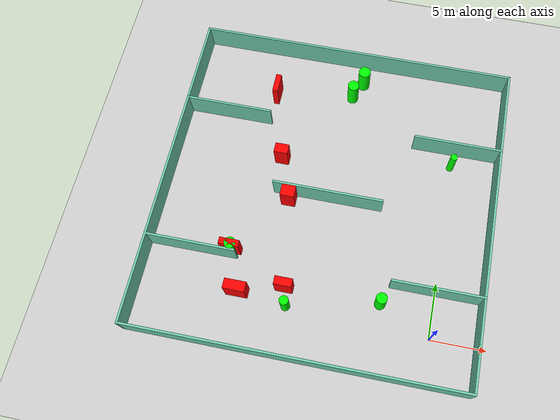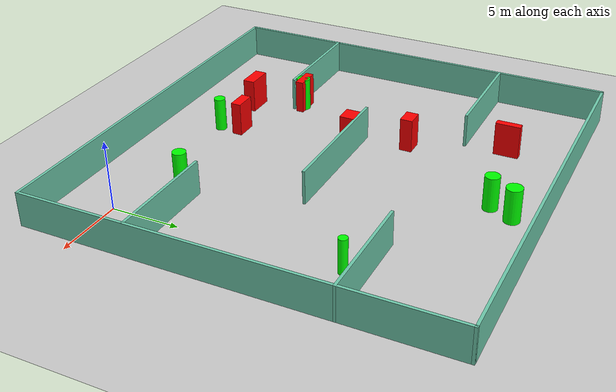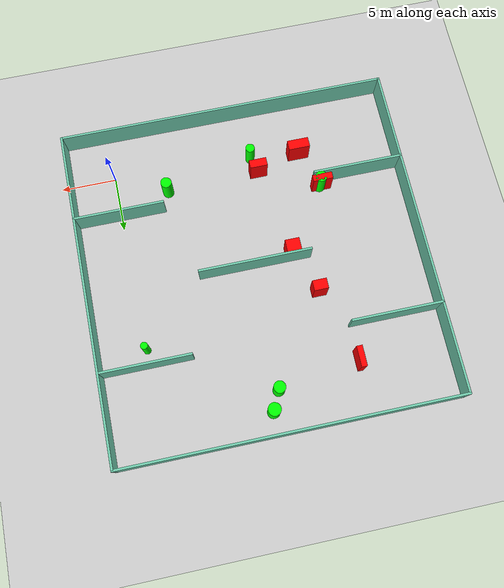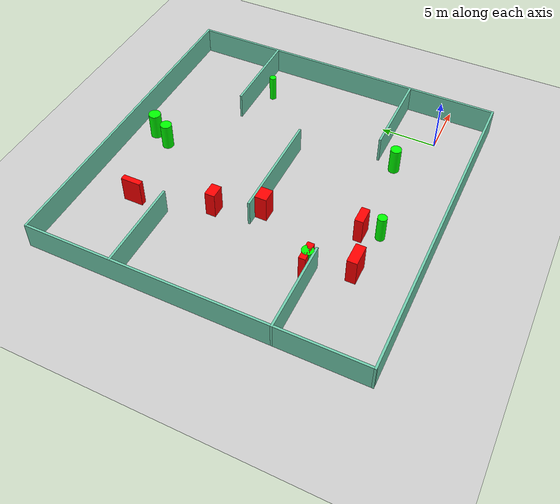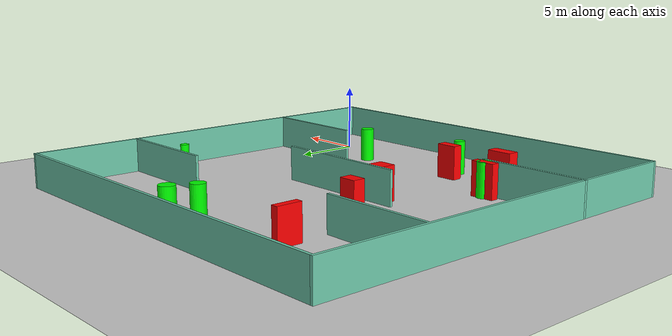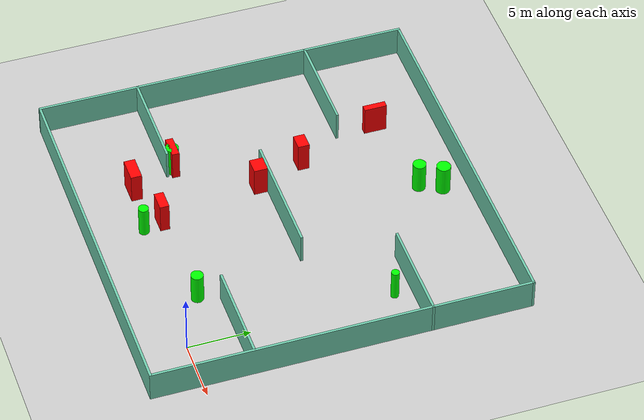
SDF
<sdf version="1.7">
 <world name="default">
  <light name="sun" type="directional">
   <pose>0 0 10 0 -0 0</pose>
   <diffuse>0.8 0.8 0.8 1</diffuse>
   <specular>0.2 0.2 0.2 1</specular>
   <attenuation>
    <range>1000</range>
    <constant>0.9</constant>
    <linear>0.01</linear>
    <quadratic>0.001</quadratic>
   </attenuation>
   <direction>-0.5 0.1 -0.9</direction>
   <spot><inner_angle>0</inner_angle><outer_angle>0</outer_angle><falloff>0</falloff></spot>
  </light>
  <model name="ground_plane">
   <static>1</static>
   <link name="link">
    <collision name="collision">
     <geometry><plane><normal>0 0 1</normal><size>100 100</size></plane></geometry>
     <surface>
      <contact><collide_bitmask>65535</collide_bitmask></contact>
      <friction><ode><mu>100</mu><mu2>50</mu2></ode></friction>
     </surface>
    </collision>
    <visual name="visual">
     <cast_shadows>0</cast_shadows>
     <geometry><plane><normal>0 0 1</normal><size>100 100</size></plane></geometry>
     <material>
      <script><uri>file://media/materials/scripts/gazebo.material</uri><name>Gazebo/Grey</name></script>
     </material>
    </visual>
   </link>
  </model>
  <gravity>0 0 -9.8</gravity>
  <magnetic_field>6e-06 2.3e-05 -4.2e-05</magnetic_field>
  <atmosphere type="adiabatic"/>
  <physics type="ode">
   <max_step_size>0.001</max_step_size>
   <real_time_factor>1</real_time_factor>
   <real_time_update_rate>1000</real_time_update_rate>
  </physics>
  <scene><ambient>0.4 0.4 0.4 1</ambient><background>0.7 0.7 0.7 1</background><shadows>1</shadows></scene>
  <spherical_coordinates>
   <surface_model>EARTH_WGS84</surface_model>
   <latitude_deg>0</latitude_deg>
   <longitude_deg>0</longitude_deg>
   <elevation>0</elevation>
   <heading_deg>0</heading_deg>
  </spherical_coordinates>
  <model name="my_base_walls">
   <link name="Wall_10">
    <collision name="Wall_10_Collision">
     <geometry><box><size>8.2 0.2 2.5</size></box></geometry>
     <pose>0 0 1.25 0 -0 0</pose>
    </collision>
    <visual name="Wall_10_Visual">
     <pose>0 0 1.25 0 -0 0</pose>
     <geometry><box><size>8.2 0.2 2.5</size></box></geometry>
     <material>
      <script><uri>file://media/materials/scripts/gazebo.material</uri><name>Gazebo/Grey</name></script>
      <ambient>0.435294 0.796078 0.67451 1</ambient>
     </material>
     <meta><layer>0</layer></meta>
    </visual>
    <pose>-11 -7 0 0 -0 0</pose>
   </link>
   <link name="Wall_12">
    <collision name="Wall_12_Collision">
     <geometry><box><size>8.2 0.2 2.5</size></box></geometry>
     <pose>0 0 1.25 0 -0 0</pose>
    </collision>
    <visual name="Wall_12_Visual">
     <pose>0 0 1.25 0 -0 0</pose>
     <geometry><box><size>8.2 0.2 2.5</size></box></geometry>
     <material>
      <script><uri>file://media/materials/scripts/gazebo.material</uri><name>Gazebo/Grey</name></script>
      <ambient>0.435294 0.796078 0.67451 1</ambient>
     </material>
     <meta><layer>0</layer></meta>
    </visual>
    <pose>-11 7 0 0 -0 0</pose>
   </link>
   <link name="Wall_14">
    <collision name="Wall_14_Collision">
     <geometry><box><size>8.2 0.2 2.5</size></box></geometry>
     <pose>0 0 1.25 0 -0 0</pose>
    </collision>
    <visual name="Wall_14_Visual">
     <pose>0 0 1.25 0 -0 0</pose>
     <geometry><box><size>8.2 0.2 2.5</size></box></geometry>
     <material>
      <script><uri>file://media/materials/scripts/gazebo.material</uri><name>Gazebo/Grey</name></script>
      <ambient>0.435294 0.796078 0.67451 1</ambient>
     </material>
     <meta><layer>0</layer></meta>
    </visual>
    <pose>11 7 0 0 -0 3.14159</pose>
   </link>
   <link name="Wall_16">
    <collision name="Wall_16_Collision">
     <geometry><box><size>10.2 0.2 2.5</size></box></geometry>
     <pose>0 0 1.25 0 -0 0</pose>
    </collision>
    <visual name="Wall_16_Visual">
     <pose>0 0 1.25 0 -0 0</pose>
     <geometry><box><size>10.2 0.2 2.5</size></box></geometry>
     <material>
      <script><uri>file://media/materials/scripts/gazebo.material</uri><name>Gazebo/Grey</name></script>
      <ambient>0.435294 0.796078 0.67451 1</ambient>
     </material>
     <meta><layer>0</layer></meta>
    </visual>
    <pose>0 0 0 0 -0 3.14159</pose>
   </link>
   <link name="Wall_2">
    <collision name="Wall_2_Collision">
     <geometry><box><size>30.2 0.2 2.5</size></box></geometry>
     <pose>0 0 1.25 0 -0 0</pose>
    </collision>
    <visual name="Wall_2_Visual">
     <pose>0 0 1.25 0 -0 0</pose>
     <geometry><box><size>30.2 0.2 2.5</size></box></geometry>
     <material>
      <script><uri>file://media/materials/scripts/gazebo.material</uri><name>Gazebo/Grey</name></script>
      <ambient>0.435294 0.796078 0.67451 1</ambient>
     </material>
     <meta><layer>0</layer></meta>
    </visual>
    <pose>0 -15 0 0 -0 3.14159</pose>
   </link>
   <link name="Wall_3">
    <collision name="Wall_3_Collision">
     <geometry><box><size>30.2 0.2 2.5</size></box></geometry>
     <pose>0 0 1.25 0 -0 0</pose>
    </collision>
    <visual name="Wall_3_Visual">
     <pose>0 0 1.25 0 -0 0</pose>
     <geometry><box><size>30.2 0.2 2.5</size></box></geometry>
     <material>
      <script><uri>file://media/materials/scripts/gazebo.material</uri><name>Gazebo/Grey</name></script>
      <ambient>0.435294 0.796078 0.67451 1</ambient>
     </material>
     <meta><layer>0</layer></meta>
    </visual>
    <pose>-15 0 0 0 -0 1.5708</pose>
   </link>
   <link name="Wall_4">
    <collision name="Wall_4_Collision">
     <geometry><box><size>30.2 0.2 2.5</size></box></geometry>
     <pose>0 0 1.25 0 -0 0</pose>
    </collision>
    <visual name="Wall_4_Visual">
     <pose>0 0 1.25 0 -0 0</pose>
     <geometry><box><size>30.2 0.2 2.5</size></box></geometry>
     <material>
      <script><uri>file://media/materials/scripts/gazebo.material</uri><name>Gazebo/Grey</name></script>
      <ambient>0.435294 0.796078 0.67451 1</ambient>
     </material>
     <meta><layer>0</layer></meta>
    </visual>
    <pose>0 15 0 0 -0 0</pose>
   </link>
   <link name="Wall_6">
    <collision name="Wall_6_Collision">
     <geometry><box><size>30.2 0.2 2.5</size></box></geometry>
     <pose>0 0 1.25 0 -0 0</pose>
    </collision>
    <visual name="Wall_6_Visual">
     <pose>0 0 1.25 0 -0 0</pose>
     <geometry><box><size>30.2 0.2 2.5</size></box></geometry>
     <material>
      <script><uri>file://media/materials/scripts/gazebo.material</uri><name>Gazebo/Grey</name></script>
      <ambient>0.435294 0.796078 0.67451 1</ambient>
     </material>
     <meta><layer>0</layer></meta>
    </visual>
    <pose>15 0 0 0 -0 1.5708</pose>
   </link>
   <link name="Wall_8">
    <collision name="Wall_8_Collision">
     <geometry><box><size>8.2 0.2 2.5</size></box></geometry>
     <pose>0 0 1.25 0 -0 0</pose>
    </collision>
    <visual name="Wall_8_Visual">
     <pose>0 0 1.25 0 -0 0</pose>
     <geometry><box><size>8.2 0.2 2.5</size></box></geometry>
     <material>
      <script><uri>file://media/materials/scripts/gazebo.material</uri><name>Gazebo/Grey</name></script>
      <ambient>0.435294 0.796078 0.67451 1</ambient>
     </material>
     <meta><layer>0</layer></meta>
    </visual>
    <pose>11 -7 0 0 -0 3.14159</pose>
   </link>
   <static>1</static>
   <pose>-11 11 0 0 -0 0</pose>
  </model>
  <model name="cylinder1">
   <static>1</static>
   <link name="link">
    <inertial>
     <mass>1</mass>
     <inertia><ixx>0.5</ixx><ixy>0</ixy><ixz>0</ixz><iyy>0.5</iyy><iyz>0</iyz><izz>1</izz></inertia>
    </inertial>
    <collision name="collision">
     <geometry><cylinder><radius>0.5268122976512754</radius><length>2.5</length></cylinder></geometry>
    </collision>
    <visual name="visual">
     <geometry><cylinder><radius>0.5268122976512754</radius><length>2.5</length></cylinder></geometry>
     <material>
      <ambient>0 1 0 1</ambient>
      <diffuse>0 1 0 1</diffuse>
      <specular>0.1 0.1 0.1 1</specular>
      <emissive>0 0 0 0</emissive>
     </material>
    </visual>
   </link>
   <pose>-10.668761010996414 22.242909591233484 1.25 0 0 0</pose>
  </model>
  <model name="cylinder2">
   <static>1</static>
   <link name="link">
    <inertial>
     <mass>1</mass>
     <inertia><ixx>0.5</ixx><ixy>0</ixy><ixz>0</ixz><iyy>0.5</iyy><iyz>0</iyz><izz>1</izz></inertia>
    </inertial>
    <collision name="collision">
     <geometry><cylinder><radius>0.315960898025115</radius><length>2.5</length></cylinder></geometry>
    </collision>
    <visual name="visual">
     <geometry><cylinder><radius>0.315960898025115</radius><length>2.5</length></cylinder></geometry>
     <material>
      <ambient>0 1 0 1</ambient>
      <diffuse>0 1 0 1</diffuse>
      <specular>0.1 0.1 0.1 1</specular>
      <emissive>0 0 0 0</emissive>
     </material>
    </visual>
   </link>
   <pose>-0.21780796337167985 16.508270981192894 1.25 0 0 0</pose>
  </model>
  <model name="cylinder3">
   <static>1</static>
   <link name="link">
    <inertial>
     <mass>1</mass>
     <inertia><ixx>0.5</ixx><ixy>0</ixy><ixz>0</ixz><iyy>0.5</iyy><iyz>0</iyz><izz>1</izz></inertia>
    </inertial>
    <collision name="collision">
     <geometry><cylinder><radius>0.5692313069539834</radius><length>2.5</length></cylinder></geometry>
    </collision>
    <visual name="visual">
     <geometry><cylinder><radius>0.5692313069539834</radius><length>2.5</length></cylinder></geometry>
     <material>
      <ambient>0 1 0 1</ambient>
      <diffuse>0 1 0 1</diffuse>
      <specular>0.1 0.1 0.1 1</specular>
      <emissive>0 0 0 0</emissive>
     </material>
    </visual>
   </link>
   <pose>-9.859405309523899 23.939877246051708 1.25 0 0 0</pose>
  </model>
  <model name="cylinder4">
   <static>1</static>
   <link name="link">
    <inertial>
     <mass>1</mass>
     <inertia><ixx>0.5</ixx><ixy>0</ixy><ixz>0</ixz><iyy>0.5</iyy><iyz>0</iyz><izz>1</izz></inertia>
    </inertial>
    <collision name="collision">
     <geometry><cylinder><radius>0.5186174000991292</radius><length>2.5</length></cylinder></geometry>
    </collision>
    <visual name="visual">
     <geometry><cylinder><radius>0.5186174000991292</radius><length>2.5</length></cylinder></geometry>
     <material>
      <ambient>0 1 0 1</ambient>
      <diffuse>0 1 0 1</diffuse>
      <specular>0.1 0.1 0.1 1</specular>
      <emissive>0 0 0 0</emissive>
     </material>
    </visual>
   </link>
   <pose>-18.476597376010986 4.563803073610554 1.25 0 0 0</pose>
  </model>
  <model name="cylinder5">
   <static>1</static>
   <link name="link">
    <inertial>
     <mass>1</mass>
     <inertia><ixx>0.5</ixx><ixy>0</ixy><ixz>0</ixz><iyy>0.5</iyy><iyz>0</iyz><izz>1</izz></inertia>
    </inertial>
    <collision name="collision">
     <geometry><cylinder><radius>0.49388821219043777</radius><length>2.5</length></cylinder></geometry>
    </collision>
    <visual name="visual">
     <geometry><cylinder><radius>0.49388821219043777</radius><length>2.5</length></cylinder></geometry>
     <material>
      <ambient>0 1 0 1</ambient>
      <diffuse>0 1 0 1</diffuse>
      <specular>0.1 0.1 0.1 1</specular>
      <emissive>0 0 0 0</emissive>
     </material>
    </visual>
   </link>
   <pose>-4.625552983908179 2.2764114832785527 1.25 0 0 0</pose>
  </model>
  <model name="cylinder6">
   <static>1</static>
   <link name="link">
    <inertial>
     <mass>1</mass>
     <inertia><ixx>0.5</ixx><ixy>0</ixy><ixz>0</ixz><iyy>0.5</iyy><iyz>0</iyz><izz>1</izz></inertia>
    </inertial>
    <collision name="collision">
     <geometry><cylinder><radius>0.41036582006900585</radius><length>2.5</length></cylinder></geometry>
    </collision>
    <visual name="visual">
     <geometry><cylinder><radius>0.41036582006900585</radius><length>2.5</length></cylinder></geometry>
     <material>
      <ambient>0 1 0 1</ambient>
      <diffuse>0 1 0 1</diffuse>
      <specular>0.1 0.1 0.1 1</specular>
      <emissive>0 0 0 0</emissive>
     </material>
    </visual>
   </link>
   <pose>-12.729316854802219 0.5094562411430998 1.25 0 0 0</pose>
  </model>
  <model name="box1">
   <static>1</static>
   <link name="link">
    <inertial>
     <mass>1</mass>
     <inertia><ixx>0.083</ixx><ixy>0</ixy><ixz>0</ixz><iyy>0.083</iyy><iyz>0</iyz><izz>0.083</izz></inertia>
    </inertial>
    <collision name="collision">
     <geometry><box><size>1.283027615994841 0.9145167121193263 2.5</size></box></geometry>
    </collision>
    <visual name="visual">
     <geometry><box><size>1.283027615994841 0.9145167121193263 2.5</size></box></geometry>
     <material>
      <ambient>1 0 0 1</ambient>
      <diffuse>1 0 0 1</diffuse>
      <specular>0.1 0.1 0.1 1</specular>
      <emissive>0 0 0 0</emissive>
     </material>
    </visual>
    <sensor name="my_contact" type="contact">
     <contact><collision>box_collision</collision><topic>__default_topic__</topic></contact>
    </sensor>
   </link>
   <pose>-16.030064529791442 14.366183440407568 1.25 0 0 0</pose>
  </model>
  <model name="box2">
   <static>1</static>
   <link name="link">
    <inertial>
     <mass>1</mass>
     <inertia><ixx>0.083</ixx><ixy>0</ixy><ixz>0</ixz><iyy>0.083</iyy><iyz>0</iyz><izz>0.083</izz></inertia>
    </inertial>
    <collision name="collision">
     <geometry><box><size>1.5801139550211196 0.750051405999907 2.5</size></box></geometry>
    </collision>
    <visual name="visual">
     <geometry><box><size>1.5801139550211196 0.750051405999907 2.5</size></box></geometry>
     <material>
      <ambient>1 0 0 1</ambient>
      <diffuse>1 0 0 1</diffuse>
      <specular>0.1 0.1 0.1 1</specular>
      <emissive>0 0 0 0</emissive>
     </material>
    </visual>
    <sensor name="my_contact" type="contact">
     <contact><collision>box_collision</collision><topic>__default_topic__</topic></contact>
    </sensor>
   </link>
   <pose>-13.153311094324325 2.089830285051253 1.25 0 0 0</pose>
  </model>
  <model name="box3">
   <static>1</static>
   <link name="link">
    <inertial>
     <mass>1</mass>
     <inertia><ixx>0.083</ixx><ixy>0</ixy><ixz>0</ixz><iyy>0.083</iyy><iyz>0</iyz><izz>0.083</izz></inertia>
    </inertial>
    <collision name="collision">
     <geometry><box><size>1.9323506182680448 0.8875842384040644 2.5</size></box></geometry>
    </collision>
    <visual name="visual">
     <geometry><box><size>1.9323506182680448 0.8875842384040644 2.5</size></box></geometry>
     <material>
      <ambient>1 0 0 1</ambient>
      <diffuse>1 0 0 1</diffuse>
      <specular>0.1 0.1 0.1 1</specular>
      <emissive>0 0 0 0</emissive>
     </material>
    </visual>
    <sensor name="my_contact" type="contact">
     <contact><collision>box_collision</collision><topic>__default_topic__</topic></contact>
    </sensor>
   </link>
   <pose>-17.161698466122754 0.9854751764082348 1.25 0 0 0</pose>
  </model>
  <model name="box4">
   <static>1</static>
   <link name="link">
    <inertial>
     <mass>1</mass>
     <inertia><ixx>0.083</ixx><ixy>0</ixy><ixz>0</ixz><iyy>0.083</iyy><iyz>0</iyz><izz>0.083</izz></inertia>
    </inertial>
    <collision name="collision">
     <geometry><box><size>1.291234464054104 1.0984451589356723 2.5</size></box></geometry>
    </collision>
    <visual name="visual">
     <geometry><box><size>1.291234464054104 1.0984451589356723 2.5</size></box></geometry>
     <material>
      <ambient>1 0 0 1</ambient>
      <diffuse>1 0 0 1</diffuse>
      <specular>0.1 0.1 0.1 1</specular>
      <emissive>0 0 0 0</emissive>
     </material>
    </visual>
    <sensor name="my_contact" type="contact">
     <contact><collision>box_collision</collision><topic>__default_topic__</topic></contact>
    </sensor>
   </link>
   <pose>-14.540573774483809 10.361935234967694 1.25 0 0 0</pose>
  </model>
  <model name="box5">
   <static>1</static>
   <link name="link">
    <inertial>
     <mass>1</mass>
     <inertia><ixx>0.083</ixx><ixy>0</ixy><ixz>0</ixz><iyy>0.083</iyy><iyz>0</iyz><izz>0.083</izz></inertia>
    </inertial>
    <collision name="collision">
     <geometry><box><size>1.8022316444919095 0.602720955057559 2.5</size></box></geometry>
    </collision>
    <visual name="visual">
     <geometry><box><size>1.8022316444919095 0.602720955057559 2.5</size></box></geometry>
     <material>
      <ambient>1 0 0 1</ambient>
      <diffuse>1 0 0 1</diffuse>
      <specular>0.1 0.1 0.1 1</specular>
      <emissive>0 0 0 0</emissive>
     </material>
    </visual>
    <sensor name="my_contact" type="contact">
     <contact><collision>box_collision</collision><topic>__default_topic__</topic></contact>
    </sensor>
   </link>
   <pose>-18.573517591652262 4.616931719111564 1.25 0 0 0</pose>
  </model>
  <model name="box6">
   <static>1</static>
   <link name="link">
    <inertial>
     <mass>1</mass>
     <inertia><ixx>0.083</ixx><ixy>0</ixy><ixz>0</ixz><iyy>0.083</iyy><iyz>0</iyz><izz>0.083</izz></inertia>
    </inertial>
    <collision name="collision">
     <geometry><box><size>0.5164791469399355 1.8172380743569057 2.5</size></box></geometry>
    </collision>
    <visual name="visual">
     <geometry><box><size>0.5164791469399355 1.8172380743569057 2.5</size></box></geometry>
     <material>
      <ambient>1 0 0 1</ambient>
      <diffuse>1 0 0 1</diffuse>
      <specular>0.1 0.1 0.1 1</specular>
      <emissive>0 0 0 0</emissive>
     </material>
    </visual>
    <sensor name="my_contact" type="contact">
     <contact><collision>box_collision</collision><topic>__default_topic__</topic></contact>
    </sensor>
   </link>
   <pose>-17.986370345098354 21.142644747864693 1.25 0 0 0</pose>
  </model>
 </world>
</sdf>
